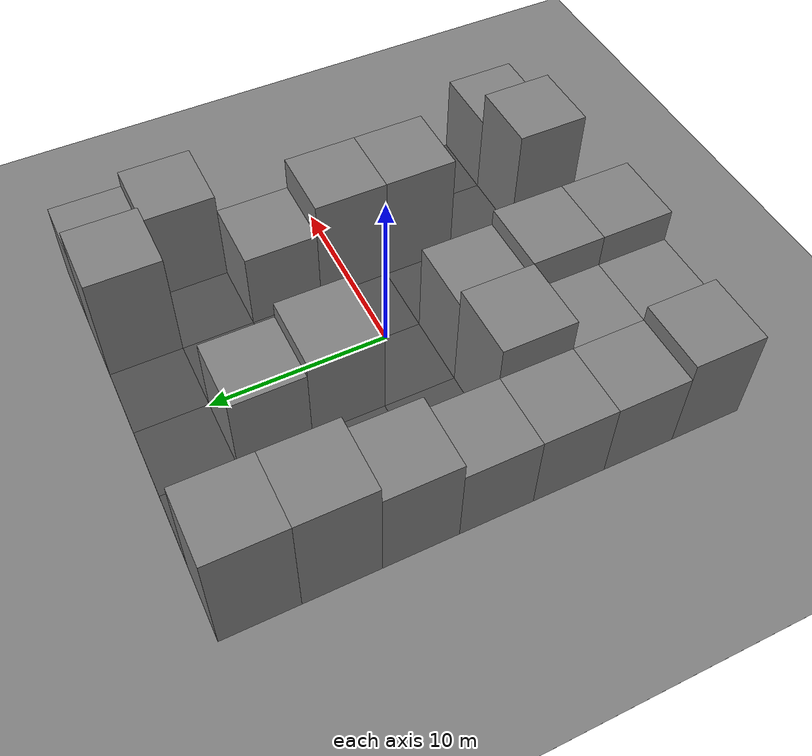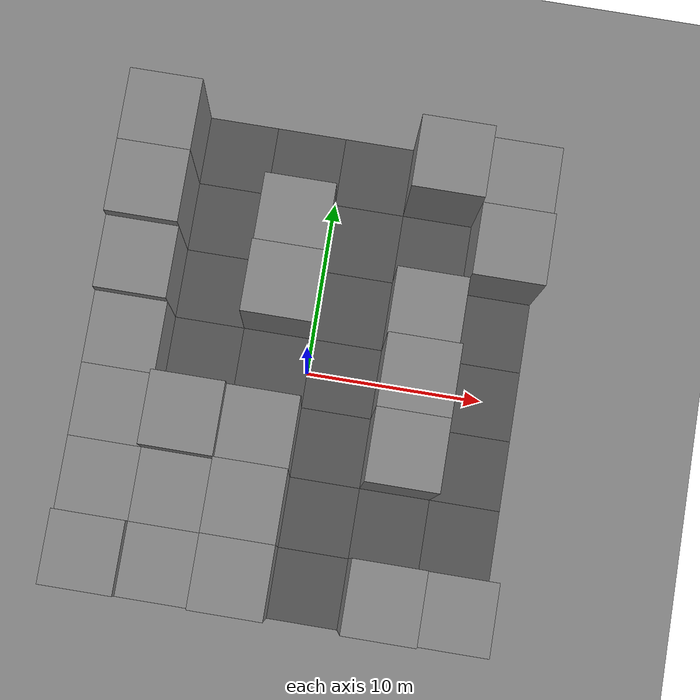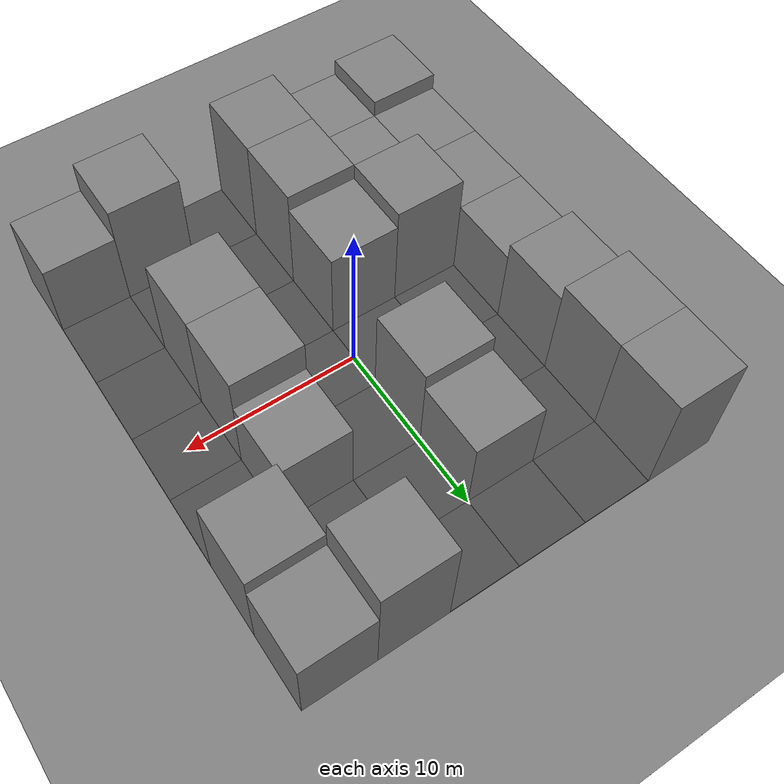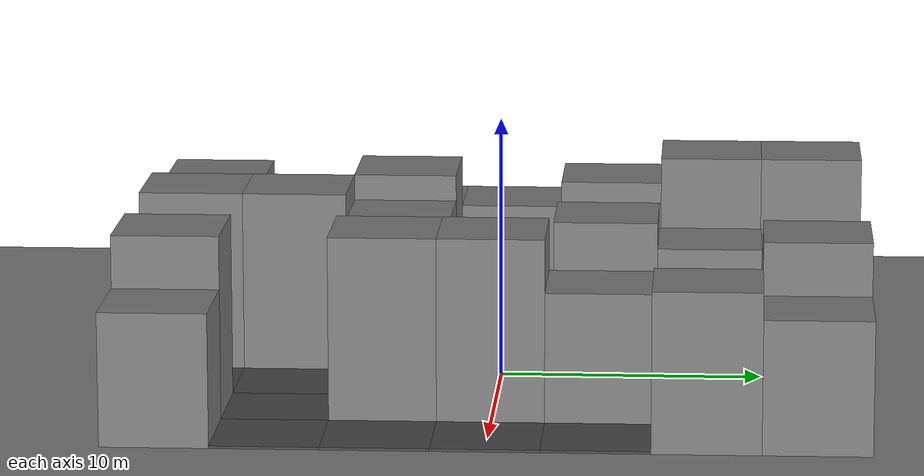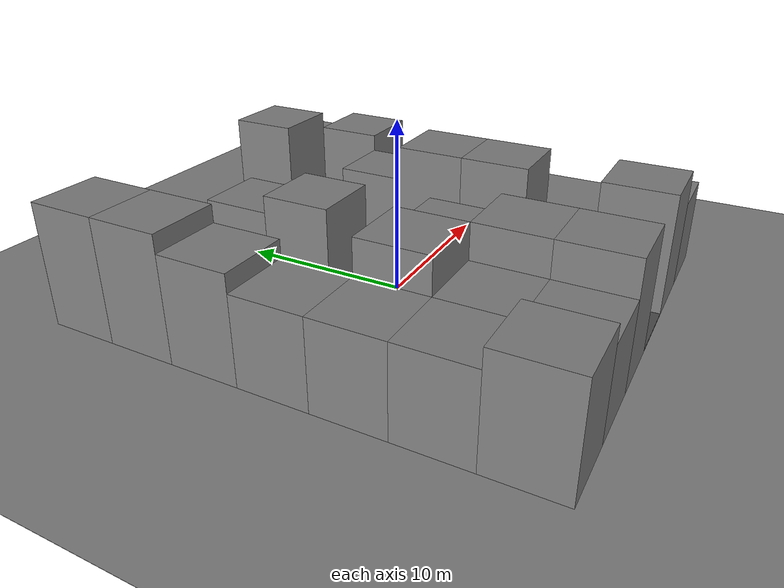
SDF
<?xml version="1.0" ?>
<sdf version="1.6">
  <world name="default">
    <light name="sun" type="directional">
      <cast_shadows>1</cast_shadows>
      <pose>0 0 10 0 -0 0</pose>
      <diffuse>0.8 0.8 0.8 1</diffuse>
      <specular>0.2 0.2 0.2 1</specular>
      <attenuation>
        <range>1000</range>
        <constant>0.9</constant>
        <linear>0.01</linear>
        <quadratic>0.001</quadratic>
      </attenuation>
      <direction>-0.5 0.1 -0.9</direction>
    </light>
    <model name="ground_plane">
      <static>true</static>
      <link name="link">
        <collision name="collision">
          <geometry>
            <box>
              <size>100 100 0.01</size>
            </box>
          </geometry>
        </collision>
        <visual name="visual">
          <geometry>
            <box>
              <size>100 100 0.01</size>
            </box>
          </geometry>
          <material>
            <ambient>0.5 0.5 0.5 1</ambient>
            <diffuse>0.5 0.5 0.5 1</diffuse>
            <specular>0.1 0.1 0.1 1</specular>
            <emissive>0 0 0 1</emissive>
          </material>
        </visual>
      </link>
    </model>
    <model name="building_17">
      <pose>-2.0 -8.0 3.5 0 0 0</pose>
      <static>true</static>
      <link name="link">
        <visual name="visual">
          <geometry>
            <box>
              <size>4.0 4.0 7.0</size>
            </box>
          </geometry>
          <material>
            <ambient>0.5 0.5 0.5 1</ambient>
            <diffuse>0.5 0.5 0.5 1</diffuse>
            <specular>0.1 0.1 0.1 1</specular>
            <emissive>0 0 0 1</emissive>
          </material>
        </visual>
        <collision name="collision">
          <geometry>
            <box>
              <size>4.0 4.0 7.0</size>
            </box>
          </geometry>
        </collision>
      </link>
    </model>
    <model name="building_19">
      <pose>-6.0 -4.0 3.5 0 0 0</pose>
      <static>true</static>
      <link name="link">
        <visual name="visual">
          <geometry>
            <box>
              <size>4.0 4.0 7.0</size>
            </box>
          </geometry>
          <material>
            <ambient>0.5 0.5 0.5 1</ambient>
            <diffuse>0.5 0.5 0.5 1</diffuse>
            <specular>0.1 0.1 0.1 1</specular>
            <emissive>0 0 0 1</emissive>
          </material>
        </visual>
        <collision name="collision">
          <geometry>
            <box>
              <size>4.0 4.0 7.0</size>
            </box>
          </geometry>
        </collision>
      </link>
    </model>
    <model name="building_18">
      <pose>-2.0 -12.0 3.5 0 0 0</pose>
      <static>true</static>
      <link name="link">
        <visual name="visual">
          <geometry>
            <box>
              <size>4.0 4.0 7.0</size>
            </box>
          </geometry>
          <material>
            <ambient>0.5 0.5 0.5 1</ambient>
            <diffuse>0.5 0.5 0.5 1</diffuse>
            <specular>0.1 0.1 0.1 1</specular>
            <emissive>0 0 0 1</emissive>
          </material>
        </visual>
        <collision name="collision">
          <geometry>
            <box>
              <size>4.0 4.0 7.0</size>
            </box>
          </geometry>
        </collision>
      </link>
    </model>
    <model name="building_23">
      <pose>-6.0 -8.0 2.5 0 0 0</pose>
      <static>true</static>
      <link name="link">
        <visual name="visual">
          <geometry>
            <box>
              <size>4.0 4.0 5.0</size>
            </box>
          </geometry>
          <material>
            <ambient>0.5 0.5 0.5 1</ambient>
            <diffuse>0.5 0.5 0.5 1</diffuse>
            <specular>0.1 0.1 0.1 1</specular>
            <emissive>0 0 0 1</emissive>
          </material>
        </visual>
        <collision name="collision">
          <geometry>
            <box>
              <size>4.0 4.0 5.0</size>
            </box>
          </geometry>
        </collision>
      </link>
    </model>
    <model name="building_22">
      <pose>-6.0 -12.0 2.5 0 0 0</pose>
      <static>true</static>
      <link name="link">
        <visual name="visual">
          <geometry>
            <box>
              <size>4.0 4.0 5.0</size>
            </box>
          </geometry>
          <material>
            <ambient>0.5 0.5 0.5 1</ambient>
            <diffuse>0.5 0.5 0.5 1</diffuse>
            <specular>0.1 0.1 0.1 1</specular>
            <emissive>0 0 0 1</emissive>
          </material>
        </visual>
        <collision name="collision">
          <geometry>
            <box>
              <size>4.0 4.0 5.0</size>
            </box>
          </geometry>
        </collision>
      </link>
    </model>
    <model name="building_1">
      <pose>-2.0 -4.0 3 0 0 0</pose>
      <static>true</static>
      <link name="link">
        <visual name="visual">
          <geometry>
            <box>
              <size>4.0 4.0 6.0</size>
            </box>
          </geometry>
          <material>
            <ambient>0.5 0.5 0.5 1</ambient>
            <diffuse>0.5 0.5 0.5 1</diffuse>
            <specular>0.1 0.1 0.1 1</specular>
            <emissive>0 0 0 1</emissive>
          </material>
        </visual>
        <collision name="collision">
          <geometry>
            <box>
              <size>4.0 4.0 6.0</size>
            </box>
          </geometry>
        </collision>
      </link>
    </model>
    <model name="road_2">
      <pose>2.0 -4.0 0.05 0 0 0</pose>
      <static>true</static>
      <link name="link">
        <visual name="visual">
          <geometry>
            <box>
              <size>4.0 4.0 0.1</size>
            </box>
          </geometry>
          <material>
            <ambient>0.3 0.3 0.3 1</ambient>
            <diffuse>0.3 0.3 0.3 1</diffuse>
            <specular>0.01 0.01 0.01 1</specular>
            <emissive>0 0 0 1</emissive>
          </material>
        </visual>
        <collision name="collision">
          <geometry>
            <box>
              <size>4.0 4.0 0.1</size>
            </box>
          </geometry>
        </collision>
      </link>
    </model>
    <model name="road_3">
      <pose>-2.0 0.0 0.05 0 0 0</pose>
      <static>true</static>
      <link name="link">
        <visual name="visual">
          <geometry>
            <box>
              <size>4.0 4.0 0.1</size>
            </box>
          </geometry>
          <material>
            <ambient>0.3 0.3 0.3 1</ambient>
            <diffuse>0.3 0.3 0.3 1</diffuse>
            <specular>0.01 0.01 0.01 1</specular>
            <emissive>0 0 0 1</emissive>
          </material>
        </visual>
        <collision name="collision">
          <geometry>
            <box>
              <size>4.0 4.0 0.1</size>
            </box>
          </geometry>
        </collision>
      </link>
    </model>
    <model name="road_4">
      <pose>2.0 0.0 0.05 0 0 0</pose>
      <static>true</static>
      <link name="link">
        <visual name="visual">
          <geometry>
            <box>
              <size>4.0 4.0 0.1</size>
            </box>
          </geometry>
          <material>
            <ambient>0.3 0.3 0.3 1</ambient>
            <diffuse>0.3 0.3 0.3 1</diffuse>
            <specular>0.01 0.01 0.01 1</specular>
            <emissive>0 0 0 1</emissive>
          </material>
        </visual>
        <collision name="collision">
          <geometry>
            <box>
              <size>4.0 4.0 0.1</size>
            </box>
          </geometry>
        </collision>
      </link>
    </model>
    <model name="building_5">
      <pose>-2.0 4.0 3 0 0 0</pose>
      <static>true</static>
      <link name="link">
        <visual name="visual">
          <geometry>
            <box>
              <size>4.0 4.0 6.0</size>
            </box>
          </geometry>
          <material>
            <ambient>0.5 0.5 0.5 1</ambient>
            <diffuse>0.5 0.5 0.5 1</diffuse>
            <specular>0.1 0.1 0.1 1</specular>
            <emissive>0 0 0 1</emissive>
          </material>
        </visual>
        <collision name="collision">
          <geometry>
            <box>
              <size>4.0 4.0 6.0</size>
            </box>
          </geometry>
        </collision>
      </link>
    </model>
    <model name="building_16">
      <pose>6.0 -12.0 3.5 0 0 0</pose>
      <static>true</static>
      <link name="link">
        <visual name="visual">
          <geometry>
            <box>
              <size>4.0 4.0 7.0</size>
            </box>
          </geometry>
          <material>
            <ambient>0.5 0.5 0.5 1</ambient>
            <diffuse>0.5 0.5 0.5 1</diffuse>
            <specular>0.1 0.1 0.1 1</specular>
            <emissive>0 0 0 1</emissive>
          </material>
        </visual>
        <collision name="collision">
          <geometry>
            <box>
              <size>4.0 4.0 7.0</size>
            </box>
          </geometry>
        </collision>
      </link>
    </model>
    <model name="building_15">
      <pose>6.0 -4.0 3.5 0 0 0</pose>
      <static>true</static>
      <link name="link">
        <visual name="visual">
          <geometry>
            <box>
              <size>4.0 4.0 7.0</size>
            </box>
          </geometry>
          <material>
            <ambient>0.5 0.5 0.5 1</ambient>
            <diffuse>0.5 0.5 0.5 1</diffuse>
            <specular>0.1 0.1 0.1 1</specular>
            <emissive>0 0 0 1</emissive>
          </material>
        </visual>
        <collision name="collision">
          <geometry>
            <box>
              <size>4.0 4.0 7.0</size>
            </box>
          </geometry>
        </collision>
      </link>
    </model>
    <model name="building_14">
      <pose>6.0 0 3.5 0 0 0</pose>
      <static>true</static>
      <link name="link">
        <visual name="visual">
          <geometry>
            <box>
              <size>4.0 4.0 7.0</size>
            </box>
          </geometry>
          <material>
            <ambient>0.5 0.5 0.5 1</ambient>
            <diffuse>0.5 0.5 0.5 1</diffuse>
            <specular>0.1 0.1 0.1 1</specular>
            <emissive>0 0 0 1</emissive>
          </material>
        </visual>
        <collision name="collision">
          <geometry>
            <box>
              <size>4.0 4.0 7.0</size>
            </box>
          </geometry>
        </collision>
      </link>
    </model>
    <model name="building_3">
      <pose>6.0 4.0 2.5 0 0 0</pose>
      <static>true</static>
      <link name="link">
        <visual name="visual">
          <geometry>
            <box>
              <size>4.0 4.0 5.0</size>
            </box>
          </geometry>
          <material>
            <ambient>0.5 0.5 0.5 1</ambient>
            <diffuse>0.5 0.5 0.5 1</diffuse>
            <specular>0.1 0.1 0.1 1</specular>
            <emissive>0 0 0 1</emissive>
          </material>
        </visual>
        <collision name="collision">
          <geometry>
            <box>
              <size>4.0 4.0 5.0</size>
            </box>
          </geometry>
        </collision>
      </link>
    </model>
    <model name="road_6">
      <pose>2.0 4.0 0.05 0 0 0</pose>
      <static>true</static>
      <link name="link">
        <visual name="visual">
          <geometry>
            <box>
              <size>4.0 4.0 0.1</size>
            </box>
          </geometry>
          <material>
            <ambient>0.3 0.3 0.3 1</ambient>
            <diffuse>0.3 0.3 0.3 1</diffuse>
            <specular>0.01 0.01 0.01 1</specular>
            <emissive>0 0 0 1</emissive>
          </material>
        </visual>
        <collision name="collision">
          <geometry>
            <box>
              <size>4.0 4.0 0.1</size>
            </box>
          </geometry>
        </collision>
      </link>
    </model>
    <model name="building_7">
      <pose>-10.0 0 2.5 0 0 0</pose>
      <static>true</static>
      <link name="link">
        <visual name="visual">
          <geometry>
            <box>
              <size>4.0 4.0 5.0</size>
            </box>
          </geometry>
          <material>
            <ambient>0.5 0.5 0.5 1</ambient>
            <diffuse>0.5 0.5 0.5 1</diffuse>
            <specular>0.1 0.1 0.1 1</specular>
            <emissive>0 0 0 1</emissive>
          </material>
        </visual>
        <collision name="collision">
          <geometry>
            <box>
              <size>4.0 4.0 5.0</size>
            </box>
          </geometry>
        </collision>
      </link>
    </model>
    <model name="building_10">
      <pose>-10.0 4.0 3 0 0 0</pose>
      <static>true</static>
      <link name="link">
        <visual name="visual">
          <geometry>
            <box>
              <size>4.0 4.0 6.0</size>
            </box>
          </geometry>
          <material>
            <ambient>0.5 0.5 0.5 1</ambient>
            <diffuse>0.5 0.5 0.5 1</diffuse>
            <specular>0.1 0.1 0.1 1</specular>
            <emissive>0 0 0 1</emissive>
          </material>
        </visual>
        <collision name="collision">
          <geometry>
            <box>
              <size>4.0 4.0 6.0</size>
            </box>
          </geometry>
        </collision>
      </link>
    </model>
    <model name="building_8">
      <pose>-10.0 -4.0 2.5 0 0 0</pose>
      <static>true</static>
      <link name="link">
        <visual name="visual">
          <geometry>
            <box>
              <size>4.0 4.0 5.0</size>
            </box>
          </geometry>
          <material>
            <ambient>0.5 0.5 0.5 1</ambient>
            <diffuse>0.5 0.5 0.5 1</diffuse>
            <specular>0.1 0.1 0.1 1</specular>
            <emissive>0 0 0 1</emissive>
          </material>
        </visual>
        <collision name="collision">
          <geometry>
            <box>
              <size>4.0 4.0 5.0</size>
            </box>
          </geometry>
        </collision>
      </link>
    </model>
    <model name="building_9">
      <pose>-10.0 -8.0 2.5 0 0 0</pose>
      <static>true</static>
      <link name="link">
        <visual name="visual">
          <geometry>
            <box>
              <size>4.0 4.0 5.0</size>
            </box>
          </geometry>
          <material>
            <ambient>0.5 0.5 0.5 1</ambient>
            <diffuse>0.5 0.5 0.5 1</diffuse>
            <specular>0.1 0.1 0.1 1</specular>
            <emissive>0 0 0 1</emissive>
          </material>
        </visual>
        <collision name="collision">
          <geometry>
            <box>
              <size>4.0 4.0 5.0</size>
            </box>
          </geometry>
        </collision>
      </link>
    </model>
    <model name="building_11">
      <pose>-10.0 -12.0 3 0 0 0</pose>
      <static>true</static>
      <link name="link">
        <visual name="visual">
          <geometry>
            <box>
              <size>4.0 4.0 6.0</size>
            </box>
          </geometry>
          <material>
            <ambient>0.5 0.5 0.5 1</ambient>
            <diffuse>0.5 0.5 0.5 1</diffuse>
            <specular>0.1 0.1 0.1 1</specular>
            <emissive>0 0 0 1</emissive>
          </material>
        </visual>
        <collision name="collision">
          <geometry>
            <box>
              <size>4.0 4.0 6.0</size>
            </box>
          </geometry>
        </collision>
      </link>
    </model>
    <model name="road_7">
      <pose>-6.0 0 0.05 0 0 0</pose>
      <static>true</static>
      <link name="link">
        <visual name="visual">
          <geometry>
            <box>
              <size>4.0 4.0 0.1</size>
            </box>
          </geometry>
          <material>
            <ambient>0.3 0.3 0.3 1</ambient>
            <diffuse>0.3 0.3 0.3 1</diffuse>
            <specular>0.01 0.01 0.01 1</specular>
            <emissive>0 0 0 1</emissive>
          </material>
        </visual>
        <collision name="collision">
          <geometry>
            <box>
              <size>4.0 4.0 0.1</size>
            </box>
          </geometry>
        </collision>
      </link>
    </model>
    <model name="road_8">
      <pose>-6.0 4.0 0.05 0 0 0</pose>
      <static>true</static>
      <link name="link">
        <visual name="visual">
          <geometry>
            <box>
              <size>4.0 4.0 0.1</size>
            </box>
          </geometry>
          <material>
            <ambient>0.3 0.3 0.3 1</ambient>
            <diffuse>0.3 0.3 0.3 1</diffuse>
            <specular>0.01 0.01 0.01 1</specular>
            <emissive>0 0 0 1</emissive>
          </material>
        </visual>
        <collision name="collision">
          <geometry>
            <box>
              <size>4.0 4.0 0.1</size>
            </box>
          </geometry>
        </collision>
      </link>
    </model>
    <model name="road_9">
      <pose>-6.0 8.0 0.05 0 0 0</pose>
      <static>true</static>
      <link name="link">
        <visual name="visual">
          <geometry>
            <box>
              <size>4.0 4.0 0.1</size>
            </box>
          </geometry>
          <material>
            <ambient>0.3 0.3 0.3 1</ambient>
            <diffuse>0.3 0.3 0.3 1</diffuse>
            <specular>0.01 0.01 0.01 1</specular>
            <emissive>0 0 0 1</emissive>
          </material>
        </visual>
        <collision name="collision">
          <geometry>
            <box>
              <size>4.0 4.0 0.1</size>
            </box>
          </geometry>
        </collision>
      </link>
    </model>
    <model name="building_21">
      <pose>-10.0 8.0 3.5 0 0 0</pose>
      <static>true</static>
      <link name="link">
        <visual name="visual">
          <geometry>
            <box>
              <size>4.0 4.0 7.0</size>
            </box>
          </geometry>
          <material>
            <ambient>0.5 0.5 0.5 1</ambient>
            <diffuse>0.5 0.5 0.5 1</diffuse>
            <specular>0.1 0.1 0.1 1</specular>
            <emissive>0 0 0 1</emissive>
          </material>
        </visual>
        <collision name="collision">
          <geometry>
            <box>
              <size>4.0 4.0 7.0</size>
            </box>
          </geometry>
        </collision>
      </link>
    </model>
    <model name="building_20">
      <pose>-10.0 12.0 3.5 0 0 0</pose>
      <static>true</static>
      <link name="link">
        <visual name="visual">
          <geometry>
            <box>
              <size>4.0 4.0 7.0</size>
            </box>
          </geometry>
          <material>
            <ambient>0.5 0.5 0.5 1</ambient>
            <diffuse>0.5 0.5 0.5 1</diffuse>
            <specular>0.1 0.1 0.1 1</specular>
            <emissive>0 0 0 1</emissive>
          </material>
        </visual>
        <collision name="collision">
          <geometry>
            <box>
              <size>4.0 4.0 7.0</size>
            </box>
          </geometry>
        </collision>
      </link>
    </model>
    <model name="road_10">
      <pose>-6.0 12.0 0.05 0 0 0</pose>
      <static>true</static>
      <link name="link">
        <visual name="visual">
          <geometry>
            <box>
              <size>4.0 4.0 0.1</size>
            </box>
          </geometry>
          <material>
            <ambient>0.3 0.3 0.3 1</ambient>
            <diffuse>0.3 0.3 0.3 1</diffuse>
            <specular>0.01 0.01 0.01 1</specular>
            <emissive>0 0 0 1</emissive>
          </material>
        </visual>
        <collision name="collision">
          <geometry>
            <box>
              <size>4.0 4.0 0.1</size>
            </box>
          </geometry>
        </collision>
      </link>
    </model>
    <model name="road_11">
      <pose>-2.0 12.0 0.05 0 0 0</pose>
      <static>true</static>
      <link name="link">
        <visual name="visual">
          <geometry>
            <box>
              <size>4.0 4.0 0.1</size>
            </box>
          </geometry>
          <material>
            <ambient>0.3 0.3 0.3 1</ambient>
            <diffuse>0.3 0.3 0.3 1</diffuse>
            <specular>0.01 0.01 0.01 1</specular>
            <emissive>0 0 0 1</emissive>
          </material>
        </visual>
        <collision name="collision">
          <geometry>
            <box>
              <size>4.0 4.0 0.1</size>
            </box>
          </geometry>
        </collision>
      </link>
    </model>
    <model name="building_6">
      <pose>-2.0 8.0 2.5 0 0 0</pose>
      <static>true</static>
      <link name="link">
        <visual name="visual">
          <geometry>
            <box>
              <size>4.0 4.0 5.0</size>
            </box>
          </geometry>
          <material>
            <ambient>0.5 0.5 0.5 1</ambient>
            <diffuse>0.5 0.5 0.5 1</diffuse>
            <specular>0.1 0.1 0.1 1</specular>
            <emissive>0 0 0 1</emissive>
          </material>
        </visual>
        <collision name="collision">
          <geometry>
            <box>
              <size>4.0 4.0 5.0</size>
            </box>
          </geometry>
        </collision>
      </link>
    </model>
    <model name="road_12">
      <pose>2.0 8.0 0.05 0 0 0</pose>
      <static>true</static>
      <link name="link">
        <visual name="visual">
          <geometry>
            <box>
              <size>4.0 4.0 0.1</size>
            </box>
          </geometry>
          <material>
            <ambient>0.3 0.3 0.3 1</ambient>
            <diffuse>0.3 0.3 0.3 1</diffuse>
            <specular>0.01 0.01 0.01 1</specular>
            <emissive>0 0 0 1</emissive>
          </material>
        </visual>
        <collision name="collision">
          <geometry>
            <box>
              <size>4.0 4.0 0.1</size>
            </box>
          </geometry>
        </collision>
      </link>
    </model>
    <model name="road_13">
      <pose>6.0 -8.0 0.05 0 0 0</pose>
      <static>true</static>
      <link name="link">
        <visual name="visual">
          <geometry>
            <box>
              <size>4.0 4.0 0.1</size>
            </box>
          </geometry>
          <material>
            <ambient>0.3 0.3 0.3 1</ambient>
            <diffuse>0.3 0.3 0.3 1</diffuse>
            <specular>0.01 0.01 0.01 1</specular>
            <emissive>0 0 0 1</emissive>
          </material>
        </visual>
        <collision name="collision">
          <geometry>
            <box>
              <size>4.0 4.0 0.1</size>
            </box>
          </geometry>
        </collision>
      </link>
    </model>
    <model name="road_14">
      <pose>2.0 12.0 0.05 0 0 0</pose>
      <static>true</static>
      <link name="link">
        <visual name="visual">
          <geometry>
            <box>
              <size>4.0 4.0 0.1</size>
            </box>
          </geometry>
          <material>
            <ambient>0.3 0.3 0.3 1</ambient>
            <diffuse>0.3 0.3 0.3 1</diffuse>
            <specular>0.01 0.01 0.01 1</specular>
            <emissive>0 0 0 1</emissive>
          </material>
        </visual>
        <collision name="collision">
          <geometry>
            <box>
              <size>4.0 4.0 0.1</size>
            </box>
          </geometry>
        </collision>
      </link>
    </model>
    <model name="road_16">
      <pose>2.0 8.0 0.05 0 0 0</pose>
      <static>true</static>
      <link name="link">
        <visual name="visual">
          <geometry>
            <box>
              <size>4.0 4.0 0.1</size>
            </box>
          </geometry>
          <material>
            <ambient>0.3 0.3 0.3 1</ambient>
            <diffuse>0.3 0.3 0.3 1</diffuse>
            <specular>0.01 0.01 0.01 1</specular>
            <emissive>0 0 0 1</emissive>
          </material>
        </visual>
        <collision name="collision">
          <geometry>
            <box>
              <size>4.0 4.0 0.1</size>
            </box>
          </geometry>
        </collision>
      </link>
    </model>
    <model name="road_23">
      <pose>6.0 8.0 0.05 0 0 0</pose>
      <static>true</static>
      <link name="link">
        <visual name="visual">
          <geometry>
            <box>
              <size>4.0 4.0 0.1</size>
            </box>
          </geometry>
          <material>
            <ambient>0.3 0.3 0.3 1</ambient>
            <diffuse>0.3 0.3 0.3 1</diffuse>
            <specular>0.01 0.01 0.01 1</specular>
            <emissive>0 0 0 1</emissive>
          </material>
        </visual>
        <collision name="collision">
          <geometry>
            <box>
              <size>4.0 4.0 0.1</size>
            </box>
          </geometry>
        </collision>
      </link>
    </model>
    <model name="building_2">
      <pose>10.0 -12.0 2.5 0 0 0</pose>
      <static>true</static>
      <link name="link">
        <visual name="visual">
          <geometry>
            <box>
              <size>4.0 4.0 5.0</size>
            </box>
          </geometry>
          <material>
            <ambient>0.5 0.5 0.5 1</ambient>
            <diffuse>0.5 0.5 0.5 1</diffuse>
            <specular>0.1 0.1 0.1 1</specular>
            <emissive>0 0 0 1</emissive>
          </material>
        </visual>
        <collision name="collision">
          <geometry>
            <box>
              <size>4.0 4.0 5.0</size>
            </box>
          </geometry>
        </collision>
      </link>
    </model>
    <model name="road_17">
      <pose>10.0 -8.0 0.05 0 0 0</pose>
      <static>true</static>
      <link name="link">
        <visual name="visual">
          <geometry>
            <box>
              <size>4.0 4.0 0.1</size>
            </box>
          </geometry>
          <material>
            <ambient>0.3 0.3 0.3 1</ambient>
            <diffuse>0.3 0.3 0.3 1</diffuse>
            <specular>0.01 0.01 0.01 1</specular>
            <emissive>0 0 0 1</emissive>
          </material>
        </visual>
        <collision name="collision">
          <geometry>
            <box>
              <size>4.0 4.0 0.1</size>
            </box>
          </geometry>
        </collision>
      </link>
    </model>
    <model name="road_18">
      <pose>10.0 -4.0 0.05 0 0 0</pose>
      <static>true</static>
      <link name="link">
        <visual name="visual">
          <geometry>
            <box>
              <size>4.0 4.0 0.1</size>
            </box>
          </geometry>
          <material>
            <ambient>0.3 0.3 0.3 1</ambient>
            <diffuse>0.3 0.3 0.3 1</diffuse>
            <specular>0.01 0.01 0.01 1</specular>
            <emissive>0 0 0 1</emissive>
          </material>
        </visual>
        <collision name="collision">
          <geometry>
            <box>
              <size>4.0 4.0 0.1</size>
            </box>
          </geometry>
        </collision>
      </link>
    </model>
    <model name="building_12">
      <pose>10.0 8.0 3 0 0 0</pose>
      <static>true</static>
      <link name="link">
        <visual name="visual">
          <geometry>
            <box>
              <size>4.0 4.0 6.0</size>
            </box>
          </geometry>
          <material>
            <ambient>0.5 0.5 0.5 1</ambient>
            <diffuse>0.5 0.5 0.5 1</diffuse>
            <specular>0.1 0.1 0.1 1</specular>
            <emissive>0 0 0 1</emissive>
          </material>
        </visual>
        <collision name="collision">
          <geometry>
            <box>
              <size>4.0 4.0 6.0</size>
            </box>
          </geometry>
        </collision>
      </link>
    </model>
    <model name="building_13">
      <pose>6.0 12.0 3.5 0 0 0</pose>
      <static>true</static>
      <link name="link">
        <visual name="visual">
          <geometry>
            <box>
              <size>4.0 4.0 7.0</size>
            </box>
          </geometry>
          <material>
            <ambient>0.5 0.5 0.5 1</ambient>
            <diffuse>0.5 0.5 0.5 1</diffuse>
            <specular>0.1 0.1 0.1 1</specular>
            <emissive>0 0 0 1</emissive>
          </material>
        </visual>
        <collision name="collision">
          <geometry>
            <box>
              <size>4.0 4.0 7.0</size>
            </box>
          </geometry>
        </collision>
      </link>
    </model>
    <model name="building_4">
      <pose>10.0 12.0 2.5 0 0 0</pose>
      <static>true</static>
      <link name="link">
        <visual name="visual">
          <geometry>
            <box>
              <size>4.0 4.0 5.0</size>
            </box>
          </geometry>
          <material>
            <ambient>0.5 0.5 0.5 1</ambient>
            <diffuse>0.5 0.5 0.5 1</diffuse>
            <specular>0.1 0.1 0.1 1</specular>
            <emissive>0 0 0 1</emissive>
          </material>
        </visual>
        <collision name="collision">
          <geometry>
            <box>
              <size>4.0 4.0 5.0</size>
            </box>
          </geometry>
        </collision>
      </link>
    </model>
    <model name="road_19">
      <pose>10.0 4.0 0.05 0 0 0</pose>
      <static>true</static>
      <link name="link">
        <visual name="visual">
          <geometry>
            <box>
              <size>4.0 4.0 0.1</size>
            </box>
          </geometry>
          <material>
            <ambient>0.3 0.3 0.3 1</ambient>
            <diffuse>0.3 0.3 0.3 1</diffuse>
            <specular>0.01 0.01 0.01 1</specular>
            <emissive>0 0 0 1</emissive>
          </material>
        </visual>
        <collision name="collision">
          <geometry>
            <box>
              <size>4.0 4.0 0.1</size>
            </box>
          </geometry>
        </collision>
      </link>
    </model>
    <model name="road_20">
      <pose>10.0 0.0 0.05 0 0 0</pose>
      <static>true</static>
      <link name="link">
        <visual name="visual">
          <geometry>
            <box>
              <size>4.0 4.0 0.1</size>
            </box>
          </geometry>
          <material>
            <ambient>0.3 0.3 0.3 1</ambient>
            <diffuse>0.3 0.3 0.3 1</diffuse>
            <specular>0.01 0.01 0.01 1</specular>
            <emissive>0 0 0 1</emissive>
          </material>
        </visual>
        <collision name="collision">
          <geometry>
            <box>
              <size>4.0 4.0 0.1</size>
            </box>
          </geometry>
        </collision>
      </link>
    </model>
    <model name="road_15">
      <pose>2.0 -12.0 0.05 0 0 0</pose>
      <static>true</static>
      <link name="link">
        <visual name="visual">
          <geometry>
            <box>
              <size>4.0 4.0 0.1</size>
            </box>
          </geometry>
          <material>
            <ambient>0.3 0.3 0.3 1</ambient>
            <diffuse>0.3 0.3 0.3 1</diffuse>
            <specular>0.01 0.01 0.01 1</specular>
            <emissive>0 0 0 1</emissive>
          </material>
        </visual>
        <collision name="collision">
          <geometry>
            <box>
              <size>4.0 4.0 0.1</size>
            </box>
          </geometry>
        </collision>
      </link>
    </model>
    <model name="road_21">
      <pose>2.0 -8.0 0.05 0 0 0</pose>
      <static>true</static>
      <link name="link">
        <visual name="visual">
          <geometry>
            <box>
              <size>4.0 4.0 0.1</size>
            </box>
          </geometry>
          <material>
            <ambient>0.3 0.3 0.3 1</ambient>
            <diffuse>0.3 0.3 0.3 1</diffuse>
            <specular>0.01 0.01 0.01 1</specular>
            <emissive>0 0 0 1</emissive>
          </material>
        </visual>
        <collision name="collision">
          <geometry>
            <box>
              <size>4.0 4.0 0.1</size>
            </box>
          </geometry>
        </collision>
      </link>
    </model>
  </world>
</sdf>
